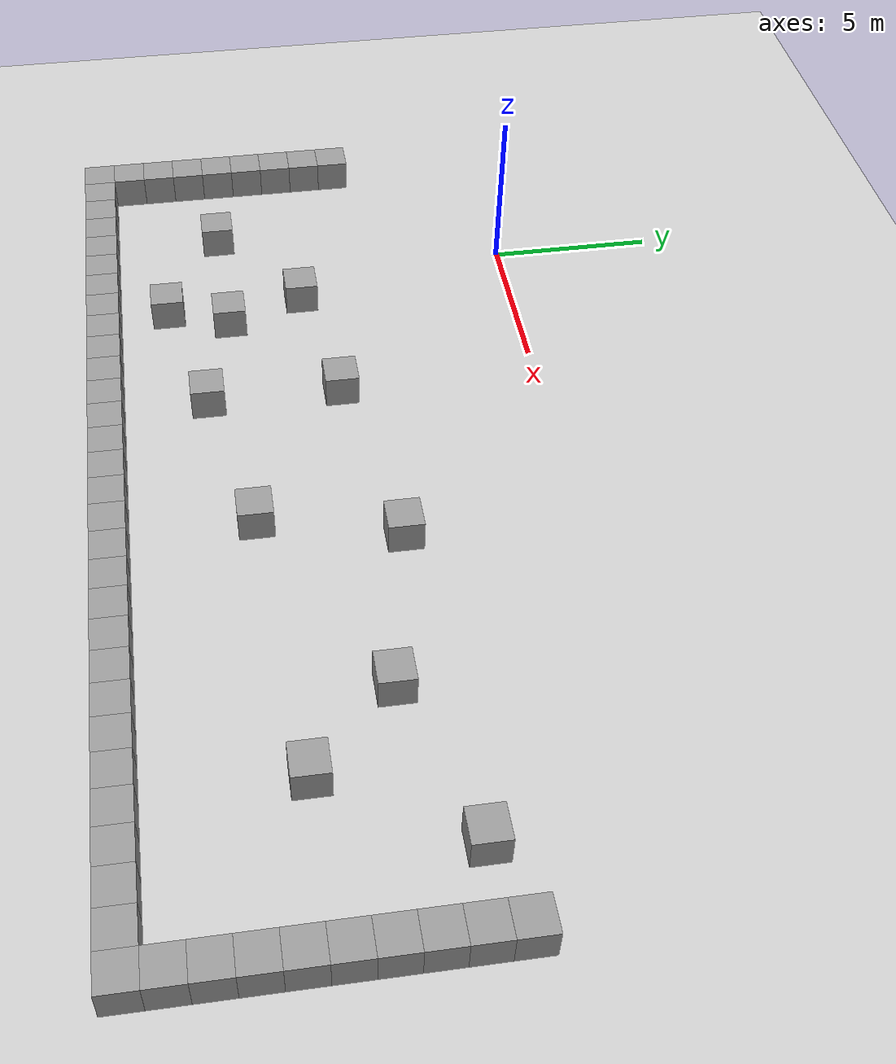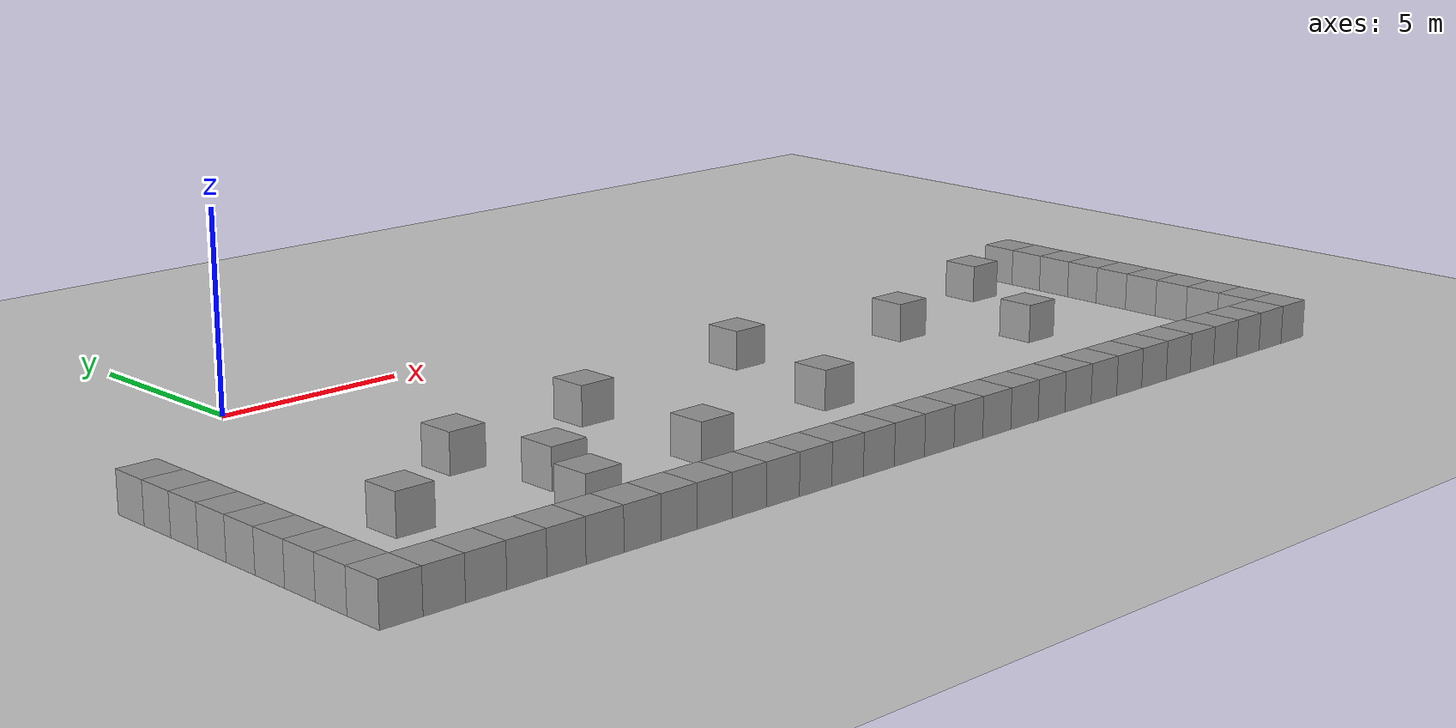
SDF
<sdf version="1.6">
 <world name="default">
  <model name="ground_plane">
   <static>1</static>
   <link name="link">
    <collision name="collision">
     <geometry><plane><normal>0 0 1</normal><size>100 100</size></plane></geometry>
     <surface><friction><ode><mu>100</mu><mu2>50</mu2></ode></friction></surface>
    </collision>
    <visual name="visual">
     <cast_shadows>0</cast_shadows>
     <geometry><plane><normal>0 0 1</normal><size>100 100</size></plane></geometry>
     <material>
      <script><uri>file://media/materials/scripts/gazebo.material</uri><name>Gazebo/Grey</name></script>
     </material>
    </visual>
    <velocity_decay><linear>0</linear><angular>0</angular></velocity_decay>
   </link>
  </model>
  <model name="unit_box_206">
   <pose>24 -4 0.5 0 0 0</pose>
   <static>1</static>
   <link name="link">
    <inertial>
     <mass>1</mass>
     <inertia><ixx>1</ixx><ixy>0</ixy><ixz>0</ixz><iyy>1</iyy><iyz>0</iyz><izz>1</izz></inertia>
    </inertial>
    <collision name="collision"><geometry><box><size>1 1 1</size></box></geometry></collision>
    <visual name="visual">
     <geometry><box><size>1 1 1</size></box></geometry>
     <material>
      <script><uri>file://media/materials/scripts/gazebo.material</uri><name>Gazebo/Grey</name></script>
     </material>
    </visual>
    <velocity_decay><linear>0</linear><angular>0</angular></velocity_decay>
   </link>
   <static>1</static>
  </model>
  <model name="unit_box_207">
   <pose>24 -5 0.5 0 0 0</pose>
   <static>1</static>
   <link name="link">
    <inertial>
     <mass>1</mass>
     <inertia><ixx>1</ixx><ixy>0</ixy><ixz>0</ixz><iyy>1</iyy><iyz>0</iyz><izz>1</izz></inertia>
    </inertial>
    <collision name="collision"><geometry><box><size>1 1 1</size></box></geometry></collision>
    <visual name="visual">
     <geometry><box><size>1 1 1</size></box></geometry>
     <material>
      <script><uri>file://media/materials/scripts/gazebo.material</uri><name>Gazebo/Grey</name></script>
     </material>
    </visual>
    <velocity_decay><linear>0</linear><angular>0</angular></velocity_decay>
   </link>
   <static>1</static>
  </model>
  <model name="unit_box_208">
   <pose>24 -6 0.5 0 0 0</pose>
   <static>1</static>
   <link name="link">
    <inertial>
     <mass>1</mass>
     <inertia><ixx>1</ixx><ixy>0</ixy><ixz>0</ixz><iyy>1</iyy><iyz>0</iyz><izz>1</izz></inertia>
    </inertial>
    <collision name="collision"><geometry><box><size>1 1 1</size></box></geometry></collision>
    <visual name="visual">
     <geometry><box><size>1 1 1</size></box></geometry>
     <material>
      <script><uri>file://media/materials/scripts/gazebo.material</uri><name>Gazebo/Grey</name></script>
     </material>
    </visual>
    <velocity_decay><linear>0</linear><angular>0</angular></velocity_decay>
   </link>
   <static>1</static>
  </model>
  <model name="unit_box_215">
   <pose>24 -7 0.5 0 0 0</pose>
   <static>1</static>
   <link name="link">
    <inertial>
     <mass>1</mass>
     <inertia><ixx>1</ixx><ixy>0</ixy><ixz>0</ixz><iyy>1</iyy><iyz>0</iyz><izz>1</izz></inertia>
    </inertial>
    <collision name="collision"><geometry><box><size>1 1 1</size></box></geometry></collision>
    <visual name="visual">
     <geometry><box><size>1 1 1</size></box></geometry>
     <material>
      <script><uri>file://media/materials/scripts/gazebo.material</uri><name>Gazebo/Grey</name></script>
     </material>
    </visual>
    <velocity_decay><linear>0</linear><angular>0</angular></velocity_decay>
   </link>
   <static>1</static>
  </model>
  <model name="unit_box_216">
   <pose>24 -8 0.5 0 0 0</pose>
   <static>1</static>
   <link name="link">
    <inertial>
     <mass>1</mass>
     <inertia><ixx>1</ixx><ixy>0</ixy><ixz>0</ixz><iyy>1</iyy><iyz>0</iyz><izz>1</izz></inertia>
    </inertial>
    <collision name="collision"><geometry><box><size>1 1 1</size></box></geometry></collision>
    <visual name="visual">
     <geometry><box><size>1 1 1</size></box></geometry>
     <material>
      <script><uri>file://media/materials/scripts/gazebo.material</uri><name>Gazebo/Grey</name></script>
     </material>
    </visual>
    <velocity_decay><linear>0</linear><angular>0</angular></velocity_decay>
   </link>
   <static>1</static>
  </model>
  <model name="unit_box_251">
   <pose>-4 -13 0.5 0 0 0</pose>
   <static>1</static>
   <link name="link">
    <inertial>
     <mass>1</mass>
     <inertia><ixx>1</ixx><ixy>0</ixy><ixz>0</ixz><iyy>1</iyy><iyz>0</iyz><izz>1</izz></inertia>
    </inertial>
    <collision name="collision"><geometry><box><size>1 1 1</size></box></geometry></collision>
    <visual name="visual">
     <geometry><box><size>1 1 1</size></box></geometry>
     <material>
      <script><uri>file://media/materials/scripts/gazebo.material</uri><name>Gazebo/Grey</name></script>
     </material>
    </visual>
    <velocity_decay><linear>0</linear><angular>0</angular></velocity_decay>
   </link>
   <static>1</static>
  </model>
  <model name="unit_box_252">
   <pose>-3 -13 0.5 0 0 0</pose>
   <static>1</static>
   <link name="link">
    <inertial>
     <mass>1</mass>
     <inertia><ixx>1</ixx><ixy>0</ixy><ixz>0</ixz><iyy>1</iyy><iyz>0</iyz><izz>1</izz></inertia>
    </inertial>
    <collision name="collision"><geometry><box><size>1 1 1</size></box></geometry></collision>
    <visual name="visual">
     <geometry><box><size>1 1 1</size></box></geometry>
     <material>
      <script><uri>file://media/materials/scripts/gazebo.material</uri><name>Gazebo/Grey</name></script>
     </material>
    </visual>
    <velocity_decay><linear>0</linear><angular>0</angular></velocity_decay>
   </link>
   <static>1</static>
  </model>
  <model name="unit_box_253">
   <pose>-2 -13 0.5 0 0 0</pose>
   <static>1</static>
   <link name="link">
    <inertial>
     <mass>1</mass>
     <inertia><ixx>1</ixx><ixy>0</ixy><ixz>0</ixz><iyy>1</iyy><iyz>0</iyz><izz>1</izz></inertia>
    </inertial>
    <collision name="collision"><geometry><box><size>1 1 1</size></box></geometry></collision>
    <visual name="visual">
     <geometry><box><size>1 1 1</size></box></geometry>
     <material>
      <script><uri>file://media/materials/scripts/gazebo.material</uri><name>Gazebo/Grey</name></script>
     </material>
    </visual>
    <velocity_decay><linear>0</linear><angular>0</angular></velocity_decay>
   </link>
   <static>1</static>
  </model>
  <model name="unit_box_254">
   <pose>-1 -13 0.5 0 0 0</pose>
   <static>1</static>
   <link name="link">
    <inertial>
     <mass>1</mass>
     <inertia><ixx>1</ixx><ixy>0</ixy><ixz>0</ixz><iyy>1</iyy><iyz>0</iyz><izz>1</izz></inertia>
    </inertial>
    <collision name="collision"><geometry><box><size>1 1 1</size></box></geometry></collision>
    <visual name="visual">
     <geometry><box><size>1 1 1</size></box></geometry>
     <material>
      <script><uri>file://media/materials/scripts/gazebo.material</uri><name>Gazebo/Grey</name></script>
     </material>
    </visual>
    <velocity_decay><linear>0</linear><angular>0</angular></velocity_decay>
   </link>
   <static>1</static>
  </model>
  <model name="unit_box_255">
   <pose>0 -13 0.5 0 0 0</pose>
   <static>1</static>
   <link name="link">
    <inertial>
     <mass>1</mass>
     <inertia><ixx>1</ixx><ixy>0</ixy><ixz>0</ixz><iyy>1</iyy><iyz>0</iyz><izz>1</izz></inertia>
    </inertial>
    <collision name="collision"><geometry><box><size>1 1 1</size></box></geometry></collision>
    <visual name="visual">
     <geometry><box><size>1 1 1</size></box></geometry>
     <material>
      <script><uri>file://media/materials/scripts/gazebo.material</uri><name>Gazebo/Grey</name></script>
     </material>
    </visual>
    <velocity_decay><linear>0</linear><angular>0</angular></velocity_decay>
   </link>
   <static>1</static>
  </model>
  <model name="unit_box_256">
   <pose>1 -13 0.5 0 0 0</pose>
   <static>1</static>
   <link name="link">
    <inertial>
     <mass>1</mass>
     <inertia><ixx>1</ixx><ixy>0</ixy><ixz>0</ixz><iyy>1</iyy><iyz>0</iyz><izz>1</izz></inertia>
    </inertial>
    <collision name="collision"><geometry><box><size>1 1 1</size></box></geometry></collision>
    <visual name="visual">
     <geometry><box><size>1 1 1</size></box></geometry>
     <material>
      <script><uri>file://media/materials/scripts/gazebo.material</uri><name>Gazebo/Grey</name></script>
     </material>
    </visual>
    <velocity_decay><linear>0</linear><angular>0</angular></velocity_decay>
   </link>
   <static>1</static>
  </model>
  <model name="unit_box_257">
   <pose>2 -13 0.5 0 0 0</pose>
   <static>1</static>
   <link name="link">
    <inertial>
     <mass>1</mass>
     <inertia><ixx>1</ixx><ixy>0</ixy><ixz>0</ixz><iyy>1</iyy><iyz>0</iyz><izz>1</izz></inertia>
    </inertial>
    <collision name="collision"><geometry><box><size>1 1 1</size></box></geometry></collision>
    <visual name="visual">
     <geometry><box><size>1 1 1</size></box></geometry>
     <material>
      <script><uri>file://media/materials/scripts/gazebo.material</uri><name>Gazebo/Grey</name></script>
     </material>
    </visual>
    <velocity_decay><linear>0</linear><angular>0</angular></velocity_decay>
   </link>
   <static>1</static>
  </model>
  <model name="unit_box_258">
   <pose>3 -13 0.5 0 0 0</pose>
   <static>1</static>
   <link name="link">
    <inertial>
     <mass>1</mass>
     <inertia><ixx>1</ixx><ixy>0</ixy><ixz>0</ixz><iyy>1</iyy><iyz>0</iyz><izz>1</izz></inertia>
    </inertial>
    <collision name="collision"><geometry><box><size>1 1 1</size></box></geometry></collision>
    <visual name="visual">
     <geometry><box><size>1 1 1</size></box></geometry>
     <material>
      <script><uri>file://media/materials/scripts/gazebo.material</uri><name>Gazebo/Grey</name></script>
     </material>
    </visual>
    <velocity_decay><linear>0</linear><angular>0</angular></velocity_decay>
   </link>
   <static>1</static>
  </model>
  <model name="unit_box_259">
   <pose>4 -13 0.5 0 0 0</pose>
   <static>1</static>
   <link name="link">
    <inertial>
     <mass>1</mass>
     <inertia><ixx>1</ixx><ixy>0</ixy><ixz>0</ixz><iyy>1</iyy><iyz>0</iyz><izz>1</izz></inertia>
    </inertial>
    <collision name="collision"><geometry><box><size>1 1 1</size></box></geometry></collision>
    <visual name="visual">
     <geometry><box><size>1 1 1</size></box></geometry>
     <material>
      <script><uri>file://media/materials/scripts/gazebo.material</uri><name>Gazebo/Grey</name></script>
     </material>
    </visual>
    <velocity_decay><linear>0</linear><angular>0</angular></velocity_decay>
   </link>
   <static>1</static>
  </model>
  <model name="unit_box_260">
   <pose>5 -13 0.5 0 0 0</pose>
   <static>1</static>
   <link name="link">
    <inertial>
     <mass>1</mass>
     <inertia><ixx>1</ixx><ixy>0</ixy><ixz>0</ixz><iyy>1</iyy><iyz>0</iyz><izz>1</izz></inertia>
    </inertial>
    <collision name="collision"><geometry><box><size>1 1 1</size></box></geometry></collision>
    <visual name="visual">
     <geometry><box><size>1 1 1</size></box></geometry>
     <material>
      <script><uri>file://media/materials/scripts/gazebo.material</uri><name>Gazebo/Grey</name></script>
     </material>
    </visual>
    <velocity_decay><linear>0</linear><angular>0</angular></velocity_decay>
   </link>
   <static>1</static>
  </model>
  <model name="unit_box_261">
   <pose>6 -13 0.5 0 0 0</pose>
   <static>1</static>
   <link name="link">
    <inertial>
     <mass>1</mass>
     <inertia><ixx>1</ixx><ixy>0</ixy><ixz>0</ixz><iyy>1</iyy><iyz>0</iyz><izz>1</izz></inertia>
    </inertial>
    <collision name="collision"><geometry><box><size>1 1 1</size></box></geometry></collision>
    <visual name="visual">
     <geometry><box><size>1 1 1</size></box></geometry>
     <material>
      <script><uri>file://media/materials/scripts/gazebo.material</uri><name>Gazebo/Grey</name></script>
     </material>
    </visual>
    <velocity_decay><linear>0</linear><angular>0</angular></velocity_decay>
   </link>
   <static>1</static>
  </model>
  <model name="unit_box_262">
   <pose>7 -13 0.5 0 0 0</pose>
   <static>1</static>
   <link name="link">
    <inertial>
     <mass>1</mass>
     <inertia><ixx>1</ixx><ixy>0</ixy><ixz>0</ixz><iyy>1</iyy><iyz>0</iyz><izz>1</izz></inertia>
    </inertial>
    <collision name="collision"><geometry><box><size>1 1 1</size></box></geometry></collision>
    <visual name="visual">
     <geometry><box><size>1 1 1</size></box></geometry>
     <material>
      <script><uri>file://media/materials/scripts/gazebo.material</uri><name>Gazebo/Grey</name></script>
     </material>
    </visual>
    <velocity_decay><linear>0</linear><angular>0</angular></velocity_decay>
   </link>
   <static>1</static>
  </model>
  <model name="unit_box_263">
   <pose>8 -13 0.5 0 0 0</pose>
   <static>1</static>
   <link name="link">
    <inertial>
     <mass>1</mass>
     <inertia><ixx>1</ixx><ixy>0</ixy><ixz>0</ixz><iyy>1</iyy><iyz>0</iyz><izz>1</izz></inertia>
    </inertial>
    <collision name="collision"><geometry><box><size>1 1 1</size></box></geometry></collision>
    <visual name="visual">
     <geometry><box><size>1 1 1</size></box></geometry>
     <material>
      <script><uri>file://media/materials/scripts/gazebo.material</uri><name>Gazebo/Grey</name></script>
     </material>
    </visual>
    <velocity_decay><linear>0</linear><angular>0</angular></velocity_decay>
   </link>
   <static>1</static>
  </model>
  <model name="unit_box_264">
   <pose>9 -13 0.5 0 0 0</pose>
   <static>1</static>
   <link name="link">
    <inertial>
     <mass>1</mass>
     <inertia><ixx>1</ixx><ixy>0</ixy><ixz>0</ixz><iyy>1</iyy><iyz>0</iyz><izz>1</izz></inertia>
    </inertial>
    <collision name="collision"><geometry><box><size>1 1 1</size></box></geometry></collision>
    <visual name="visual">
     <geometry><box><size>1 1 1</size></box></geometry>
     <material>
      <script><uri>file://media/materials/scripts/gazebo.material</uri><name>Gazebo/Grey</name></script>
     </material>
    </visual>
    <velocity_decay><linear>0</linear><angular>0</angular></velocity_decay>
   </link>
   <static>1</static>
  </model>
  <model name="unit_box_265">
   <pose>10 -13 0.5 0 0 0</pose>
   <static>1</static>
   <link name="link">
    <inertial>
     <mass>1</mass>
     <inertia><ixx>1</ixx><ixy>0</ixy><ixz>0</ixz><iyy>1</iyy><iyz>0</iyz><izz>1</izz></inertia>
    </inertial>
    <collision name="collision"><geometry><box><size>1 1 1</size></box></geometry></collision>
    <visual name="visual">
     <geometry><box><size>1 1 1</size></box></geometry>
     <material>
      <script><uri>file://media/materials/scripts/gazebo.material</uri><name>Gazebo/Grey</name></script>
     </material>
    </visual>
    <velocity_decay><linear>0</linear><angular>0</angular></velocity_decay>
   </link>
   <static>1</static>
  </model>
  <model name="unit_box_266">
   <pose>11 -13 0.5 0 0 0</pose>
   <static>1</static>
   <link name="link">
    <inertial>
     <mass>1</mass>
     <inertia><ixx>1</ixx><ixy>0</ixy><ixz>0</ixz><iyy>1</iyy><iyz>0</iyz><izz>1</izz></inertia>
    </inertial>
    <collision name="collision"><geometry><box><size>1 1 1</size></box></geometry></collision>
    <visual name="visual">
     <geometry><box><size>1 1 1</size></box></geometry>
     <material>
      <script><uri>file://media/materials/scripts/gazebo.material</uri><name>Gazebo/Grey</name></script>
     </material>
    </visual>
    <velocity_decay><linear>0</linear><angular>0</angular></velocity_decay>
   </link>
   <static>1</static>
  </model>
  <model name="unit_box_267">
   <pose>12 -13 0.5 0 0 0</pose>
   <static>1</static>
   <link name="link">
    <inertial>
     <mass>1</mass>
     <inertia><ixx>1</ixx><ixy>0</ixy><ixz>0</ixz><iyy>1</iyy><iyz>0</iyz><izz>1</izz></inertia>
    </inertial>
    <collision name="collision"><geometry><box><size>1 1 1</size></box></geometry></collision>
    <visual name="visual">
     <geometry><box><size>1 1 1</size></box></geometry>
     <material>
      <script><uri>file://media/materials/scripts/gazebo.material</uri><name>Gazebo/Grey</name></script>
     </material>
    </visual>
    <velocity_decay><linear>0</linear><angular>0</angular></velocity_decay>
   </link>
   <static>1</static>
  </model>
  <model name="unit_box_268">
   <pose>13 -13 0.5 0 0 0</pose>
   <static>1</static>
   <link name="link">
    <inertial>
     <mass>1</mass>
     <inertia><ixx>1</ixx><ixy>0</ixy><ixz>0</ixz><iyy>1</iyy><iyz>0</iyz><izz>1</izz></inertia>
    </inertial>
    <collision name="collision"><geometry><box><size>1 1 1</size></box></geometry></collision>
    <visual name="visual">
     <geometry><box><size>1 1 1</size></box></geometry>
     <material>
      <script><uri>file://media/materials/scripts/gazebo.material</uri><name>Gazebo/Grey</name></script>
     </material>
    </visual>
    <velocity_decay><linear>0</linear><angular>0</angular></velocity_decay>
   </link>
   <static>1</static>
  </model>
  <model name="unit_box_269">
   <pose>14 -13 0.5 0 0 0</pose>
   <static>1</static>
   <link name="link">
    <inertial>
     <mass>1</mass>
     <inertia><ixx>1</ixx><ixy>0</ixy><ixz>0</ixz><iyy>1</iyy><iyz>0</iyz><izz>1</izz></inertia>
    </inertial>
    <collision name="collision"><geometry><box><size>1 1 1</size></box></geometry></collision>
    <visual name="visual">
     <geometry><box><size>1 1 1</size></box></geometry>
     <material>
      <script><uri>file://media/materials/scripts/gazebo.material</uri><name>Gazebo/Grey</name></script>
     </material>
    </visual>
    <velocity_decay><linear>0</linear><angular>0</angular></velocity_decay>
   </link>
   <static>1</static>
  </model>
  <model name="unit_box_274">
   <pose>24 -9 0.5 0 0 0</pose>
   <static>1</static>
   <link name="link">
    <inertial>
     <mass>1</mass>
     <inertia><ixx>1</ixx><ixy>0</ixy><ixz>0</ixz><iyy>1</iyy><iyz>0</iyz><izz>1</izz></inertia>
    </inertial>
    <collision name="collision"><geometry><box><size>1 1 1</size></box></geometry></collision>
    <visual name="visual">
     <geometry><box><size>1 1 1</size></box></geometry>
     <material>
      <script><uri>file://media/materials/scripts/gazebo.material</uri><name>Gazebo/Grey</name></script>
     </material>
    </visual>
    <velocity_decay><linear>0</linear><angular>0</angular></velocity_decay>
   </link>
   <static>1</static>
  </model>
  <model name="unit_box_275">
   <pose>24 -10 0.5 0 0 0</pose>
   <static>1</static>
   <link name="link">
    <inertial>
     <mass>1</mass>
     <inertia><ixx>1</ixx><ixy>0</ixy><ixz>0</ixz><iyy>1</iyy><iyz>0</iyz><izz>1</izz></inertia>
    </inertial>
    <collision name="collision"><geometry><box><size>1 1 1</size></box></geometry></collision>
    <visual name="visual">
     <geometry><box><size>1 1 1</size></box></geometry>
     <material>
      <script><uri>file://media/materials/scripts/gazebo.material</uri><name>Gazebo/Grey</name></script>
     </material>
    </visual>
    <velocity_decay><linear>0</linear><angular>0</angular></velocity_decay>
   </link>
   <static>1</static>
  </model>
  <model name="unit_box_276">
   <pose>24 -11 0.5 0 0 0</pose>
   <static>1</static>
   <link name="link">
    <inertial>
     <mass>1</mass>
     <inertia><ixx>1</ixx><ixy>0</ixy><ixz>0</ixz><iyy>1</iyy><iyz>0</iyz><izz>1</izz></inertia>
    </inertial>
    <collision name="collision"><geometry><box><size>1 1 1</size></box></geometry></collision>
    <visual name="visual">
     <geometry><box><size>1 1 1</size></box></geometry>
     <material>
      <script><uri>file://media/materials/scripts/gazebo.material</uri><name>Gazebo/Grey</name></script>
     </material>
    </visual>
    <velocity_decay><linear>0</linear><angular>0</angular></velocity_decay>
   </link>
   <static>1</static>
  </model>
  <model name="unit_box_277">
   <pose>24 -12 0.5 0 0 0</pose>
   <static>1</static>
   <link name="link">
    <inertial>
     <mass>1</mass>
     <inertia><ixx>1</ixx><ixy>0</ixy><ixz>0</ixz><iyy>1</iyy><iyz>0</iyz><izz>1</izz></inertia>
    </inertial>
    <collision name="collision"><geometry><box><size>1 1 1</size></box></geometry></collision>
    <visual name="visual">
     <geometry><box><size>1 1 1</size></box></geometry>
     <material>
      <script><uri>file://media/materials/scripts/gazebo.material</uri><name>Gazebo/Grey</name></script>
     </material>
    </visual>
    <velocity_decay><linear>0</linear><angular>0</angular></velocity_decay>
   </link>
   <static>1</static>
  </model>
  <model name="unit_box_278">
   <pose>15 -13 0.5 0 0 0</pose>
   <static>1</static>
   <link name="link">
    <inertial>
     <mass>1</mass>
     <inertia><ixx>1</ixx><ixy>0</ixy><ixz>0</ixz><iyy>1</iyy><iyz>0</iyz><izz>1</izz></inertia>
    </inertial>
    <collision name="collision"><geometry><box><size>1 1 1</size></box></geometry></collision>
    <visual name="visual">
     <geometry><box><size>1 1 1</size></box></geometry>
     <material>
      <script><uri>file://media/materials/scripts/gazebo.material</uri><name>Gazebo/Grey</name></script>
     </material>
    </visual>
    <velocity_decay><linear>0</linear><angular>0</angular></velocity_decay>
   </link>
   <static>1</static>
  </model>
  <model name="unit_box_279">
   <pose>16 -13 0.5 0 0 0</pose>
   <static>1</static>
   <link name="link">
    <inertial>
     <mass>1</mass>
     <inertia><ixx>1</ixx><ixy>0</ixy><ixz>0</ixz><iyy>1</iyy><iyz>0</iyz><izz>1</izz></inertia>
    </inertial>
    <collision name="collision"><geometry><box><size>1 1 1</size></box></geometry></collision>
    <visual name="visual">
     <geometry><box><size>1 1 1</size></box></geometry>
     <material>
      <script><uri>file://media/materials/scripts/gazebo.material</uri><name>Gazebo/Grey</name></script>
     </material>
    </visual>
    <velocity_decay><linear>0</linear><angular>0</angular></velocity_decay>
   </link>
   <static>1</static>
  </model>
  <model name="unit_box_280">
   <pose>17 -13 0.5 0 0 0</pose>
   <static>1</static>
   <link name="link">
    <inertial>
     <mass>1</mass>
     <inertia><ixx>1</ixx><ixy>0</ixy><ixz>0</ixz><iyy>1</iyy><iyz>0</iyz><izz>1</izz></inertia>
    </inertial>
    <collision name="collision"><geometry><box><size>1 1 1</size></box></geometry></collision>
    <visual name="visual">
     <geometry><box><size>1 1 1</size></box></geometry>
     <material>
      <script><uri>file://media/materials/scripts/gazebo.material</uri><name>Gazebo/Grey</name></script>
     </material>
    </visual>
    <velocity_decay><linear>0</linear><angular>0</angular></velocity_decay>
   </link>
   <static>1</static>
  </model>
  <model name="unit_box_281">
   <pose>18 -13 0.5 0 0 0</pose>
   <static>1</static>
   <link name="link">
    <inertial>
     <mass>1</mass>
     <inertia><ixx>1</ixx><ixy>0</ixy><ixz>0</ixz><iyy>1</iyy><iyz>0</iyz><izz>1</izz></inertia>
    </inertial>
    <collision name="collision"><geometry><box><size>1 1 1</size></box></geometry></collision>
    <visual name="visual">
     <geometry><box><size>1 1 1</size></box></geometry>
     <material>
      <script><uri>file://media/materials/scripts/gazebo.material</uri><name>Gazebo/Grey</name></script>
     </material>
    </visual>
    <velocity_decay><linear>0</linear><angular>0</angular></velocity_decay>
   </link>
   <static>1</static>
  </model>
  <model name="unit_box_282">
   <pose>19 -13 0.5 0 0 0</pose>
   <static>1</static>
   <link name="link">
    <inertial>
     <mass>1</mass>
     <inertia><ixx>1</ixx><ixy>0</ixy><ixz>0</ixz><iyy>1</iyy><iyz>0</iyz><izz>1</izz></inertia>
    </inertial>
    <collision name="collision"><geometry><box><size>1 1 1</size></box></geometry></collision>
    <visual name="visual">
     <geometry><box><size>1 1 1</size></box></geometry>
     <material>
      <script><uri>file://media/materials/scripts/gazebo.material</uri><name>Gazebo/Grey</name></script>
     </material>
    </visual>
    <velocity_decay><linear>0</linear><angular>0</angular></velocity_decay>
   </link>
   <static>1</static>
  </model>
  <model name="unit_box_283">
   <pose>20 -13 0.5 0 0 0</pose>
   <static>1</static>
   <link name="link">
    <inertial>
     <mass>1</mass>
     <inertia><ixx>1</ixx><ixy>0</ixy><ixz>0</ixz><iyy>1</iyy><iyz>0</iyz><izz>1</izz></inertia>
    </inertial>
    <collision name="collision"><geometry><box><size>1 1 1</size></box></geometry></collision>
    <visual name="visual">
     <geometry><box><size>1 1 1</size></box></geometry>
     <material>
      <script><uri>file://media/materials/scripts/gazebo.material</uri><name>Gazebo/Grey</name></script>
     </material>
    </visual>
    <velocity_decay><linear>0</linear><angular>0</angular></velocity_decay>
   </link>
   <static>1</static>
  </model>
  <model name="unit_box_284">
   <pose>21 -13 0.5 0 0 0</pose>
   <static>1</static>
   <link name="link">
    <inertial>
     <mass>1</mass>
     <inertia><ixx>1</ixx><ixy>0</ixy><ixz>0</ixz><iyy>1</iyy><iyz>0</iyz><izz>1</izz></inertia>
    </inertial>
    <collision name="collision"><geometry><box><size>1 1 1</size></box></geometry></collision>
    <visual name="visual">
     <geometry><box><size>1 1 1</size></box></geometry>
     <material>
      <script><uri>file://media/materials/scripts/gazebo.material</uri><name>Gazebo/Grey</name></script>
     </material>
    </visual>
    <velocity_decay><linear>0</linear><angular>0</angular></velocity_decay>
   </link>
   <static>1</static>
  </model>
  <model name="unit_box_285">
   <pose>22 -13 0.5 0 0 0</pose>
   <static>1</static>
   <link name="link">
    <inertial>
     <mass>1</mass>
     <inertia><ixx>1</ixx><ixy>0</ixy><ixz>0</ixz><iyy>1</iyy><iyz>0</iyz><izz>1</izz></inertia>
    </inertial>
    <collision name="collision"><geometry><box><size>1 1 1</size></box></geometry></collision>
    <visual name="visual">
     <geometry><box><size>1 1 1</size></box></geometry>
     <material>
      <script><uri>file://media/materials/scripts/gazebo.material</uri><name>Gazebo/Grey</name></script>
     </material>
    </visual>
    <velocity_decay><linear>0</linear><angular>0</angular></velocity_decay>
   </link>
   <static>1</static>
  </model>
  <model name="unit_box_286">
   <pose>23 -13 0.5 0 0 0</pose>
   <static>1</static>
   <link name="link">
    <inertial>
     <mass>1</mass>
     <inertia><ixx>1</ixx><ixy>0</ixy><ixz>0</ixz><iyy>1</iyy><iyz>0</iyz><izz>1</izz></inertia>
    </inertial>
    <collision name="collision"><geometry><box><size>1 1 1</size></box></geometry></collision>
    <visual name="visual">
     <geometry><box><size>1 1 1</size></box></geometry>
     <material>
      <script><uri>file://media/materials/scripts/gazebo.material</uri><name>Gazebo/Grey</name></script>
     </material>
    </visual>
    <velocity_decay><linear>0</linear><angular>0</angular></velocity_decay>
   </link>
   <static>1</static>
  </model>
  <model name="unit_box_287">
   <pose>24 -13 0.5 0 0 0</pose>
   <static>1</static>
   <link name="link">
    <inertial>
     <mass>1</mass>
     <inertia><ixx>1</ixx><ixy>0</ixy><ixz>0</ixz><iyy>1</iyy><iyz>0</iyz><izz>1</izz></inertia>
    </inertial>
    <collision name="collision"><geometry><box><size>1 1 1</size></box></geometry></collision>
    <visual name="visual">
     <geometry><box><size>1 1 1</size></box></geometry>
     <material>
      <script><uri>file://media/materials/scripts/gazebo.material</uri><name>Gazebo/Grey</name></script>
     </material>
    </visual>
    <velocity_decay><linear>0</linear><angular>0</angular></velocity_decay>
   </link>
   <static>1</static>
  </model>
  <model name="unit_box_1_0">
   <pose>-5 -5 0.5 0 0 0</pose>
   <link name="link">
    <inertial>
     <mass>1</mass>
     <inertia><ixx>1</ixx><ixy>0</ixy><ixz>0</ixz><iyy>1</iyy><iyz>0</iyz><izz>1</izz></inertia>
    </inertial>
    <collision name="collision"><geometry><box><size>1 1 1</size></box></geometry></collision>
    <visual name="visual">
     <geometry><box><size>1 1 1</size></box></geometry>
     <material>
      <script><uri>file://media/materials/scripts/gazebo.material</uri><name>Gazebo/Grey</name></script>
     </material>
    </visual>
    <velocity_decay><linear>0</linear><angular>0</angular></velocity_decay>
   </link>
   <static>1</static>
  </model>
  <model name="unit_box_2_0">
   <pose>-5 -6 0.5 0 0 0</pose>
   <link name="link">
    <inertial>
     <mass>1</mass>
     <inertia><ixx>1</ixx><ixy>0</ixy><ixz>0</ixz><iyy>1</iyy><iyz>0</iyz><izz>1</izz></inertia>
    </inertial>
    <collision name="collision"><geometry><box><size>1 1 1</size></box></geometry></collision>
    <visual name="visual">
     <geometry><box><size>1 1 1</size></box></geometry>
     <material>
      <script><uri>file://media/materials/scripts/gazebo.material</uri><name>Gazebo/Grey</name></script>
     </material>
    </visual>
    <velocity_decay><linear>0</linear><angular>0</angular></velocity_decay>
   </link>
   <static>1</static>
  </model>
  <model name="unit_box_3_0">
   <pose>-5 -7 0.5 0 0 0</pose>
   <link name="link">
    <inertial>
     <mass>1</mass>
     <inertia><ixx>1</ixx><ixy>0</ixy><ixz>0</ixz><iyy>1</iyy><iyz>0</iyz><izz>1</izz></inertia>
    </inertial>
    <collision name="collision"><geometry><box><size>1 1 1</size></box></geometry></collision>
    <visual name="visual">
     <geometry><box><size>1 1 1</size></box></geometry>
     <material>
      <script><uri>file://media/materials/scripts/gazebo.material</uri><name>Gazebo/Grey</name></script>
     </material>
    </visual>
    <velocity_decay><linear>0</linear><angular>0</angular></velocity_decay>
   </link>
   <static>1</static>
  </model>
  <model name="unit_box_4_0">
   <pose>-5 -8 0.5 0 0 0</pose>
   <link name="link">
    <inertial>
     <mass>1</mass>
     <inertia><ixx>1</ixx><ixy>0</ixy><ixz>0</ixz><iyy>1</iyy><iyz>0</iyz><izz>1</izz></inertia>
    </inertial>
    <collision name="collision"><geometry><box><size>1 1 1</size></box></geometry></collision>
    <visual name="visual">
     <geometry><box><size>1 1 1</size></box></geometry>
     <material>
      <script><uri>file://media/materials/scripts/gazebo.material</uri><name>Gazebo/Grey</name></script>
     </material>
    </visual>
    <velocity_decay><linear>0</linear><angular>0</angular></velocity_decay>
   </link>
   <static>1</static>
  </model>
  <model name="unit_box_5_0">
   <pose>-5 -9 0.5 0 0 0</pose>
   <link name="link">
    <inertial>
     <mass>1</mass>
     <inertia><ixx>1</ixx><ixy>0</ixy><ixz>0</ixz><iyy>1</iyy><iyz>0</iyz><izz>1</izz></inertia>
    </inertial>
    <collision name="collision"><geometry><box><size>1 1 1</size></box></geometry></collision>
    <visual name="visual">
     <geometry><box><size>1 1 1</size></box></geometry>
     <material>
      <script><uri>file://media/materials/scripts/gazebo.material</uri><name>Gazebo/Grey</name></script>
     </material>
    </visual>
    <velocity_decay><linear>0</linear><angular>0</angular></velocity_decay>
   </link>
   <static>1</static>
  </model>
  <model name="unit_box_6_0">
   <pose>-5 -10 0.5 0 0 0</pose>
   <link name="link">
    <inertial>
     <mass>1</mass>
     <inertia><ixx>1</ixx><ixy>0</ixy><ixz>0</ixz><iyy>1</iyy><iyz>0</iyz><izz>1</izz></inertia>
    </inertial>
    <collision name="collision"><geometry><box><size>1 1 1</size></box></geometry></collision>
    <visual name="visual">
     <geometry><box><size>1 1 1</size></box></geometry>
     <material>
      <script><uri>file://media/materials/scripts/gazebo.material</uri><name>Gazebo/Grey</name></script>
     </material>
    </visual>
    <velocity_decay><linear>0</linear><angular>0</angular></velocity_decay>
   </link>
   <static>1</static>
  </model>
  <model name="unit_box_7_0">
   <pose>-5 -11 0.5 0 0 0</pose>
   <link name="link">
    <inertial>
     <mass>1</mass>
     <inertia><ixx>1</ixx><ixy>0</ixy><ixz>0</ixz><iyy>1</iyy><iyz>0</iyz><izz>1</izz></inertia>
    </inertial>
    <collision name="collision"><geometry><box><size>1 1 1</size></box></geometry></collision>
    <visual name="visual">
     <geometry><box><size>1 1 1</size></box></geometry>
     <material>
      <script><uri>file://media/materials/scripts/gazebo.material</uri><name>Gazebo/Grey</name></script>
     </material>
    </visual>
    <velocity_decay><linear>0</linear><angular>0</angular></velocity_decay>
   </link>
   <static>1</static>
  </model>
  <model name="unit_box_8_0">
   <pose>-5 -12 0.5 0 0 0</pose>
   <link name="link">
    <inertial>
     <mass>1</mass>
     <inertia><ixx>1</ixx><ixy>0</ixy><ixz>0</ixz><iyy>1</iyy><iyz>0</iyz><izz>1</izz></inertia>
    </inertial>
    <collision name="collision"><geometry><box><size>1 1 1</size></box></geometry></collision>
    <visual name="visual">
     <geometry><box><size>1 1 1</size></box></geometry>
     <material>
      <script><uri>file://media/materials/scripts/gazebo.material</uri><name>Gazebo/Grey</name></script>
     </material>
    </visual>
    <velocity_decay><linear>0</linear><angular>0</angular></velocity_decay>
   </link>
   <static>1</static>
  </model>
  <model name="unit_box_9_0">
   <pose>-5 -13 0.5 0 0 0</pose>
   <link name="link">
    <inertial>
     <mass>1</mass>
     <inertia><ixx>1</ixx><ixy>0</ixy><ixz>0</ixz><iyy>1</iyy><iyz>0</iyz><izz>1</izz></inertia>
    </inertial>
    <collision name="collision"><geometry><box><size>1 1 1</size></box></geometry></collision>
    <visual name="visual">
     <geometry><box><size>1 1 1</size></box></geometry>
     <material>
      <script><uri>file://media/materials/scripts/gazebo.material</uri><name>Gazebo/Grey</name></script>
     </material>
    </visual>
    <velocity_decay><linear>0</linear><angular>0</angular></velocity_decay>
   </link>
   <static>1</static>
  </model>
  <model name="unit_box_4_0_clone">
   <pose>-1.75 -9.2 0.5 0 0 0</pose>
   <link name="link">
    <inertial>
     <mass>1</mass>
     <inertia><ixx>1</ixx><ixy>0</ixy><ixz>0</ixz><iyy>1</iyy><iyz>0</iyz><izz>1</izz></inertia>
    </inertial>
    <collision name="collision"><geometry><box><size>1 1 1</size></box></geometry></collision>
    <visual name="visual">
     <geometry><box><size>1 1 1</size></box></geometry>
     <material>
      <script><uri>file://media/materials/scripts/gazebo.material</uri><name>Gazebo/Grey</name></script>
     </material>
    </visual>
    <velocity_decay><linear>0</linear><angular>0</angular></velocity_decay>
   </link>
   <static>1</static>
  </model>
  <model name="unit_box_4_0_clone_0">
   <pose>1.55 -6.75 0.5 0 0 0</pose>
   <link name="link">
    <inertial>
     <mass>1</mass>
     <inertia><ixx>1</ixx><ixy>0</ixy><ixz>0</ixz><iyy>1</iyy><iyz>0</iyz><izz>1</izz></inertia>
    </inertial>
    <collision name="collision"><geometry><box><size>1 1 1</size></box></geometry></collision>
    <visual name="visual">
     <geometry><box><size>1 1 1</size></box></geometry>
     <material>
      <script><uri>file://media/materials/scripts/gazebo.material</uri><name>Gazebo/Grey</name></script>
     </material>
    </visual>
    <velocity_decay><linear>0</linear><angular>0</angular></velocity_decay>
   </link>
   <static>1</static>
  </model>
  <model name="unit_box_4_0_clone_18_clone_6">
   <pose>12 -5 0.5 0 0 0</pose>
   <link name="link">
    <inertial>
     <mass>1</mass>
     <inertia><ixx>1</ixx><ixy>0</ixy><ixz>0</ixz><iyy>1</iyy><iyz>0</iyz><izz>1</izz></inertia>
    </inertial>
    <collision name="collision"><geometry><box><size>1 1 1</size></box></geometry></collision>
    <visual name="visual">
     <geometry><box><size>1 1 1</size></box></geometry>
     <material>
      <script><uri>file://media/materials/scripts/gazebo.material</uri><name>Gazebo/Grey</name></script>
     </material>
    </visual>
    <velocity_decay><linear>0</linear><angular>0</angular></velocity_decay>
   </link>
   <static>1</static>
  </model>
  <model name="unit_box_4_0_clone_18_clone_7">
   <pose>17 -6 0.5 0 0 0</pose>
   <link name="link">
    <inertial>
     <mass>1</mass>
     <inertia><ixx>1</ixx><ixy>0</ixy><ixz>0</ixz><iyy>1</iyy><iyz>0</iyz><izz>1</izz></inertia>
    </inertial>
    <collision name="collision"><geometry><box><size>1 1 1</size></box></geometry></collision>
    <visual name="visual">
     <geometry><box><size>1 1 1</size></box></geometry>
     <material>
      <script><uri>file://media/materials/scripts/gazebo.material</uri><name>Gazebo/Grey</name></script>
     </material>
    </visual>
    <velocity_decay><linear>0</linear><angular>0</angular></velocity_decay>
   </link>
   <static>1</static>
  </model>
  <model name="unit_box_4_0_clone_18_clone_8">
   <pose>19.35 -8.4 0.5 0 0 0</pose>
   <link name="link">
    <inertial>
     <mass>1</mass>
     <inertia><ixx>1</ixx><ixy>0</ixy><ixz>0</ixz><iyy>1</iyy><iyz>0</iyz><izz>1</izz></inertia>
    </inertial>
    <collision name="collision"><geometry><box><size>1 1 1</size></box></geometry></collision>
    <visual name="visual">
     <geometry><box><size>1 1 1</size></box></geometry>
     <material>
      <script><uri>file://media/materials/scripts/gazebo.material</uri><name>Gazebo/Grey</name></script>
     </material>
    </visual>
    <velocity_decay><linear>0</linear><angular>0</angular></velocity_decay>
   </link>
   <static>1</static>
  </model>
  <model name="unit_box_4_0_clone_18_clone_12">
   <pose>11 -9 0.5 0 0 0</pose>
   <link name="link">
    <inertial>
     <mass>1</mass>
     <inertia><ixx>1</ixx><ixy>0</ixy><ixz>0</ixz><iyy>1</iyy><iyz>0</iyz><izz>1</izz></inertia>
    </inertial>
    <collision name="collision"><geometry><box><size>1 1 1</size></box></geometry></collision>
    <visual name="visual">
     <geometry><box><size>1 1 1</size></box></geometry>
     <material>
      <script><uri>file://media/materials/scripts/gazebo.material</uri><name>Gazebo/Grey</name></script>
     </material>
    </visual>
    <velocity_decay><linear>0</linear><angular>0</angular></velocity_decay>
   </link>
   <static>1</static>
  </model>
  <model name="unit_box_4_0_clone_18_clone_13">
   <pose>6 -6 0.5 0 0 0</pose>
   <link name="link">
    <inertial>
     <mass>1</mass>
     <inertia><ixx>1</ixx><ixy>0</ixy><ixz>0</ixz><iyy>1</iyy><iyz>0</iyz><izz>1</izz></inertia>
    </inertial>
    <collision name="collision"><geometry><box><size>1 1 1</size></box></geometry></collision>
    <visual name="visual">
     <geometry><box><size>1 1 1</size></box></geometry>
     <material>
      <script><uri>file://media/materials/scripts/gazebo.material</uri><name>Gazebo/Grey</name></script>
     </material>
    </visual>
    <velocity_decay><linear>0</linear><angular>0</angular></velocity_decay>
   </link>
   <static>1</static>
  </model>
  <model name="unit_box_4_0_clone_18_clone_17">
   <pose>1.75 -11 0.5 0 0 0</pose>
   <link name="link">
    <inertial>
     <mass>1</mass>
     <inertia><ixx>1</ixx><ixy>0</ixy><ixz>0</ixz><iyy>1</iyy><iyz>0</iyz><izz>1</izz></inertia>
    </inertial>
    <collision name="collision"><geometry><box><size>1 1 1</size></box></geometry></collision>
    <visual name="visual">
     <geometry><box><size>1 1 1</size></box></geometry>
     <material>
      <script><uri>file://media/materials/scripts/gazebo.material</uri><name>Gazebo/Grey</name></script>
     </material>
    </visual>
    <velocity_decay><linear>0</linear><angular>0</angular></velocity_decay>
   </link>
   <static>1</static>
  </model>
  <model name="unit_box_4_0_clone_18_clone_18">
   <pose>2.45 -9.1 0.5 0 0 0</pose>
   <link name="link">
    <inertial>
     <mass>1</mass>
     <inertia><ixx>1</ixx><ixy>0</ixy><ixz>0</ixz><iyy>1</iyy><iyz>0</iyz><izz>1</izz></inertia>
    </inertial>
    <collision name="collision"><geometry><box><size>1 1 1</size></box></geometry></collision>
    <visual name="visual">
     <geometry><box><size>1 1 1</size></box></geometry>
     <material>
      <script><uri>file://media/materials/scripts/gazebo.material</uri><name>Gazebo/Grey</name></script>
     </material>
    </visual>
    <velocity_decay><linear>0</linear><angular>0</angular></velocity_decay>
   </link>
   <static>1</static>
  </model>
  <model name="unit_box_4_0_clone_18_clone_19">
   <pose>6 -10 0.5 0 0 0</pose>
   <link name="link">
    <inertial>
     <mass>1</mass>
     <inertia><ixx>1</ixx><ixy>0</ixy><ixz>0</ixz><iyy>1</iyy><iyz>0</iyz><izz>1</izz></inertia>
    </inertial>
    <collision name="collision"><geometry><box><size>1 1 1</size></box></geometry></collision>
    <visual name="visual">
     <geometry><box><size>1 1 1</size></box></geometry>
     <material>
      <script><uri>file://media/materials/scripts/gazebo.material</uri><name>Gazebo/Grey</name></script>
     </material>
    </visual>
    <velocity_decay><linear>0</linear><angular>0</angular></velocity_decay>
   </link>
   <static>1</static>
  </model>
  <model name="unit_box_4_0_clone_18_clone_26">
   <pose>21.65 -4.55 0.5 0 0 0</pose>
   <link name="link">
    <inertial>
     <mass>1</mass>
     <inertia><ixx>1</ixx><ixy>0</ixy><ixz>0</ixz><iyy>1</iyy><iyz>0</iyz><izz>1</izz></inertia>
    </inertial>
    <collision name="collision"><geometry><box><size>1 1 1</size></box></geometry></collision>
    <visual name="visual">
     <geometry><box><size>1 1 1</size></box></geometry>
     <material>
      <script><uri>file://media/materials/scripts/gazebo.material</uri><name>Gazebo/Grey</name></script>
     </material>
    </visual>
    <velocity_decay><linear>0</linear><angular>0</angular></velocity_decay>
   </link>
   <static>1</static>
  </model>
 </world>
</sdf>
